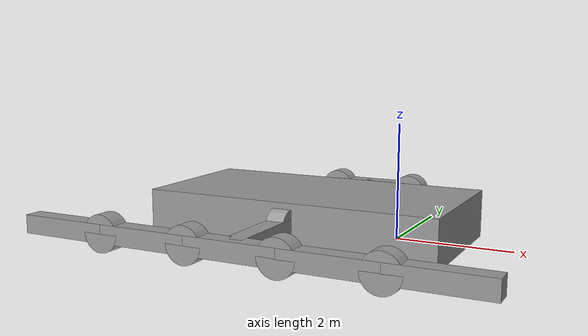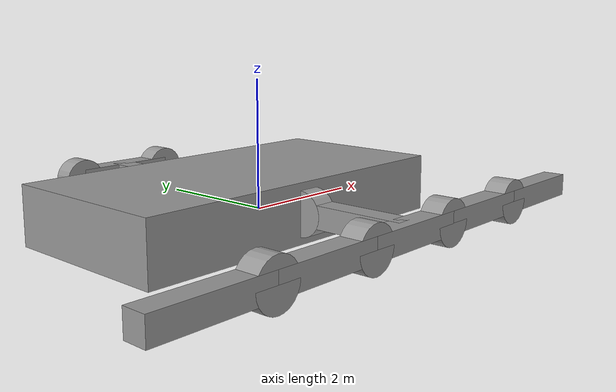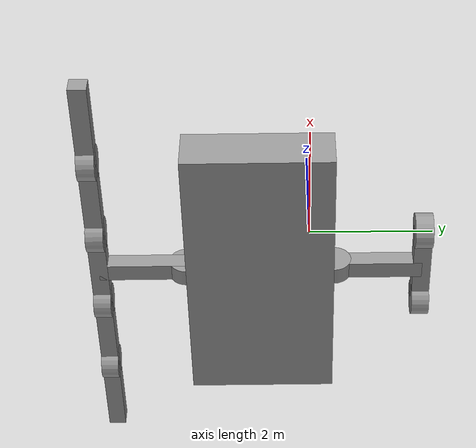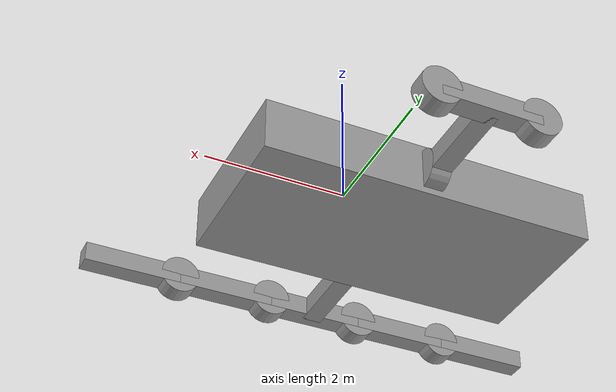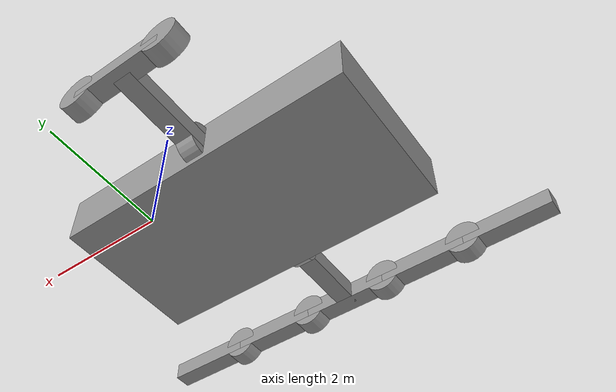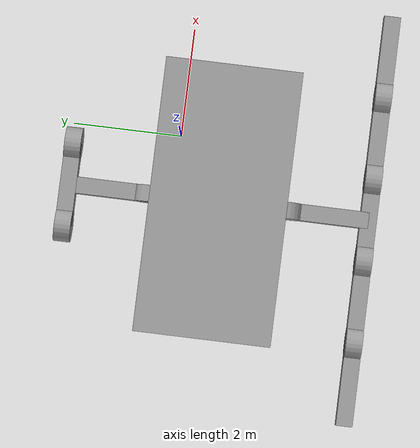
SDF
<?xml version='1.0'?>
<sdf version='1.6'>
  <model name='MS_Faraday'>
    <link name='link_4'>
      <pose frame=''>-2.66054 -3.5769 0.5 0 -0 0</pose>
      <inertial>
        <mass>1</mass>
        <inertia>
          <ixx>0.166667</ixx>
          <ixy>0</ixy>
          <ixz>0</ixz>
          <iyy>0.166667</iyy>
          <iyz>0</iyz>
          <izz>0.166667</izz>
        </inertia>
        <pose frame=''>0 0 0 0 -0 0</pose>
      </inertial>
      <self_collide>1</self_collide>
      <kinematic>0</kinematic>
      <visual name='visual'>
        <pose frame=''>0 0 0 0 -0 0</pose>
        <geometry>
          <box>
            <size>1.5 0.3 0.3</size>
          </box>
        </geometry>
        <material>
          <lighting>1</lighting>
          <script>
            <uri>file://media/materials/scripts/gazebo.material</uri>
            <name>Gazebo/Grey</name>
          </script>
          <ambient>0.3 0.3 0.3 1</ambient>
          <diffuse>0.7 0.7 0.7 1</diffuse>
          <specular>0.01 0.01 0.01 1</specular>
          <emissive>0 0 0 1</emissive>
          <shader type='vertex'>
            <normal_map>__default__</normal_map>
          </shader>
        </material>
        <cast_shadows>1</cast_shadows>
        <transparency>0</transparency>
      </visual>
      <collision name='collision'>
        <laser_retro>0</laser_retro>
        <max_contacts>10</max_contacts>
        <pose frame=''>0 0 0 0 -0 0</pose>
        <geometry>
          <box>
            <size>1.5 0.3 0.3</size>
          </box>
        </geometry>
        <surface>
          <friction>
            <ode>
              <mu>1</mu>
              <mu2>1</mu2>
              <fdir1>0 0 0</fdir1>
              <slip1>0</slip1>
              <slip2>0</slip2>
            </ode>
            <torsional>
              <coefficient>1</coefficient>
              <patch_radius>0</patch_radius>
              <surface_radius>0</surface_radius>
              <use_patch_radius>1</use_patch_radius>
              <ode>
                <slip>0</slip>
              </ode>
            </torsional>
          </friction>
          <bounce>
            <restitution_coefficient>0</restitution_coefficient>
            <threshold>1e+06</threshold>
          </bounce>
          <contact>
            <collide_without_contact>0</collide_without_contact>
            <collide_without_contact_bitmask>1</collide_without_contact_bitmask>
            <collide_bitmask>1</collide_bitmask>
            <ode>
              <soft_cfm>0</soft_cfm>
              <soft_erp>0.2</soft_erp>
              <kp>1e+13</kp>
              <kd>1</kd>
              <max_vel>0.01</max_vel>
              <min_depth>0</min_depth>
            </ode>
            <bullet>
              <split_impulse>1</split_impulse>
              <split_impulse_penetration_threshold>-0.01</split_impulse_penetration_threshold>
              <soft_cfm>0</soft_cfm>
              <soft_erp>0.2</soft_erp>
              <kp>1e+13</kp>
              <kd>1</kd>
            </bullet>
          </contact>
        </surface>
      </collision>
    </link>
    <link name='link_4_clone'>
      <pose frame=''>-4.16054 -3.5769 0.5 0 -0 0</pose>
      <inertial>
        <mass>1</mass>
        <inertia>
          <ixx>0.166667</ixx>
          <ixy>0</ixy>
          <ixz>0</ixz>
          <iyy>0.166667</iyy>
          <iyz>0</iyz>
          <izz>0.166667</izz>
        </inertia>
        <pose frame=''>0 0 0 0 -0 0</pose>
      </inertial>
      <self_collide>1</self_collide>
      <kinematic>0</kinematic>
      <visual name='visual'>
        <pose frame=''>0 0 0 0 -0 0</pose>
        <geometry>
          <box>
            <size>1.5 0.3 0.3</size>
          </box>
        </geometry>
        <material>
          <lighting>1</lighting>
          <script>
            <uri>file://media/materials/scripts/gazebo.material</uri>
            <name>Gazebo/Grey</name>
          </script>
          <ambient>0.3 0.3 0.3 1</ambient>
          <diffuse>0.7 0.7 0.7 1</diffuse>
          <specular>0.01 0.01 0.01 1</specular>
          <emissive>0 0 0 1</emissive>
          <shader type='vertex'>
            <normal_map>__default__</normal_map>
          </shader>
        </material>
        <cast_shadows>1</cast_shadows>
        <transparency>0</transparency>
      </visual>
      <collision name='collision'>
        <laser_retro>0</laser_retro>
        <max_contacts>10</max_contacts>
        <pose frame=''>0 0 0 0 -0 0</pose>
        <geometry>
          <box>
            <size>1.5 0.3 0.3</size>
          </box>
        </geometry>
        <surface>
          <friction>
            <ode>
              <mu>1</mu>
              <mu2>1</mu2>
              <fdir1>0 0 0</fdir1>
              <slip1>0</slip1>
              <slip2>0</slip2>
            </ode>
            <torsional>
              <coefficient>1</coefficient>
              <patch_radius>0</patch_radius>
              <surface_radius>0</surface_radius>
              <use_patch_radius>1</use_patch_radius>
              <ode>
                <slip>0</slip>
              </ode>
            </torsional>
          </friction>
          <bounce>
            <restitution_coefficient>0</restitution_coefficient>
            <threshold>1e+06</threshold>
          </bounce>
          <contact>
            <collide_without_contact>0</collide_without_contact>
            <collide_without_contact_bitmask>1</collide_without_contact_bitmask>
            <collide_bitmask>1</collide_bitmask>
            <ode>
              <soft_cfm>0</soft_cfm>
              <soft_erp>0.2</soft_erp>
              <kp>1e+13</kp>
              <kd>1</kd>
              <max_vel>0.01</max_vel>
              <min_depth>0</min_depth>
            </ode>
            <bullet>
              <split_impulse>1</split_impulse>
              <split_impulse_penetration_threshold>-0.01</split_impulse_penetration_threshold>
              <soft_cfm>0</soft_cfm>
              <soft_erp>0.2</soft_erp>
              <kp>1e+13</kp>
              <kd>1</kd>
            </bullet>
          </contact>
        </surface>
      </collision>
    </link>
    <link name='link_4_clone_0'>
      <pose frame=''>0.339461 -3.5769 0.5 0 -0 0</pose>
      <inertial>
        <mass>1</mass>
        <inertia>
          <ixx>0.166667</ixx>
          <ixy>0</ixy>
          <ixz>0</ixz>
          <iyy>0.166667</iyy>
          <iyz>0</iyz>
          <izz>0.166667</izz>
        </inertia>
        <pose frame=''>0 0 0 0 -0 0</pose>
      </inertial>
      <self_collide>1</self_collide>
      <kinematic>0</kinematic>
      <visual name='visual'>
        <pose frame=''>0 0 0 0 -0 0</pose>
        <geometry>
          <box>
            <size>1.5 0.3 0.3</size>
          </box>
        </geometry>
        <material>
          <lighting>1</lighting>
          <script>
            <uri>file://media/materials/scripts/gazebo.material</uri>
            <name>Gazebo/Grey</name>
          </script>
          <ambient>0.3 0.3 0.3 1</ambient>
          <diffuse>0.7 0.7 0.7 1</diffuse>
          <specular>0.01 0.01 0.01 1</specular>
          <emissive>0 0 0 1</emissive>
          <shader type='vertex'>
            <normal_map>__default__</normal_map>
          </shader>
        </material>
        <cast_shadows>1</cast_shadows>
        <transparency>0</transparency>
      </visual>
      <collision name='collision'>
        <laser_retro>0</laser_retro>
        <max_contacts>10</max_contacts>
        <pose frame=''>0 0 0 0 -0 0</pose>
        <geometry>
          <box>
            <size>1.5 0.3 0.3</size>
          </box>
        </geometry>
        <surface>
          <friction>
            <ode>
              <mu>1</mu>
              <mu2>1</mu2>
              <fdir1>0 0 0</fdir1>
              <slip1>0</slip1>
              <slip2>0</slip2>
            </ode>
            <torsional>
              <coefficient>1</coefficient>
              <patch_radius>0</patch_radius>
              <surface_radius>0</surface_radius>
              <use_patch_radius>1</use_patch_radius>
              <ode>
                <slip>0</slip>
              </ode>
            </torsional>
          </friction>
          <bounce>
            <restitution_coefficient>0</restitution_coefficient>
            <threshold>1e+06</threshold>
          </bounce>
          <contact>
            <collide_without_contact>0</collide_without_contact>
            <collide_without_contact_bitmask>1</collide_without_contact_bitmask>
            <collide_bitmask>1</collide_bitmask>
            <ode>
              <soft_cfm>0</soft_cfm>
              <soft_erp>0.2</soft_erp>
              <kp>1e+13</kp>
              <kd>1</kd>
              <max_vel>0.01</max_vel>
              <min_depth>0</min_depth>
            </ode>
            <bullet>
              <split_impulse>1</split_impulse>
              <split_impulse_penetration_threshold>-0.01</split_impulse_penetration_threshold>
              <soft_cfm>0</soft_cfm>
              <soft_erp>0.2</soft_erp>
              <kp>1e+13</kp>
              <kd>1</kd>
            </bullet>
          </contact>
        </surface>
      </collision>
    </link>
    <link name='link_4_clone_1'>
      <pose frame=''>1.83946 -3.5769 0.5 0 -0 0</pose>
      <inertial>
        <mass>1</mass>
        <inertia>
          <ixx>0.166667</ixx>
          <ixy>0</ixy>
          <ixz>0</ixz>
          <iyy>0.166667</iyy>
          <iyz>0</iyz>
          <izz>0.166667</izz>
        </inertia>
        <pose frame=''>0 0 0 0 -0 0</pose>
      </inertial>
      <self_collide>1</self_collide>
      <kinematic>0</kinematic>
      <visual name='visual'>
        <pose frame=''>0 0 0 0 -0 0</pose>
        <geometry>
          <box>
            <size>1.5 0.3 0.3</size>
          </box>
        </geometry>
        <material>
          <lighting>1</lighting>
          <script>
            <uri>file://media/materials/scripts/gazebo.material</uri>
            <name>Gazebo/Grey</name>
          </script>
          <ambient>0.3 0.3 0.3 1</ambient>
          <diffuse>0.7 0.7 0.7 1</diffuse>
          <specular>0.01 0.01 0.01 1</specular>
          <emissive>0 0 0 1</emissive>
          <shader type='vertex'>
            <normal_map>__default__</normal_map>
          </shader>
        </material>
        <cast_shadows>1</cast_shadows>
        <transparency>0</transparency>
      </visual>
      <collision name='collision'>
        <laser_retro>0</laser_retro>
        <max_contacts>10</max_contacts>
        <pose frame=''>0 0 0 0 -0 0</pose>
        <geometry>
          <box>
            <size>1.5 0.3 0.3</size>
          </box>
        </geometry>
        <surface>
          <friction>
            <ode>
              <mu>1</mu>
              <mu2>1</mu2>
              <fdir1>0 0 0</fdir1>
              <slip1>0</slip1>
              <slip2>0</slip2>
            </ode>
            <torsional>
              <coefficient>1</coefficient>
              <patch_radius>0</patch_radius>
              <surface_radius>0</surface_radius>
              <use_patch_radius>1</use_patch_radius>
              <ode>
                <slip>0</slip>
              </ode>
            </torsional>
          </friction>
          <bounce>
            <restitution_coefficient>0</restitution_coefficient>
            <threshold>1e+06</threshold>
          </bounce>
          <contact>
            <collide_without_contact>0</collide_without_contact>
            <collide_without_contact_bitmask>1</collide_without_contact_bitmask>
            <collide_bitmask>1</collide_bitmask>
            <ode>
              <soft_cfm>0</soft_cfm>
              <soft_erp>0.2</soft_erp>
              <kp>1e+13</kp>
              <kd>1</kd>
              <max_vel>0.01</max_vel>
              <min_depth>0</min_depth>
            </ode>
            <bullet>
              <split_impulse>1</split_impulse>
              <split_impulse_penetration_threshold>-0.01</split_impulse_penetration_threshold>
              <soft_cfm>0</soft_cfm>
              <soft_erp>0.2</soft_erp>
              <kp>1e+13</kp>
              <kd>1</kd>
            </bullet>
          </contact>
        </surface>
      </collision>
    </link>
    <link name='link_4_clone_2'>
      <pose frame=''>-1.16054 -3.5769 0.5 0 -0 0</pose>
      <inertial>
        <mass>1</mass>
        <inertia>
          <ixx>0.166667</ixx>
          <ixy>0</ixy>
          <ixz>0</ixz>
          <iyy>0.166667</iyy>
          <iyz>0</iyz>
          <izz>0.166667</izz>
        </inertia>
        <pose frame=''>0 0 0 0 -0 0</pose>
      </inertial>
      <self_collide>1</self_collide>
      <kinematic>0</kinematic>
      <visual name='visual'>
        <pose frame=''>0 0 0 0 -0 0</pose>
        <geometry>
          <box>
            <size>1.5 0.3 0.3</size>
          </box>
        </geometry>
        <material>
          <lighting>1</lighting>
          <script>
            <uri>file://media/materials/scripts/gazebo.material</uri>
            <name>Gazebo/Grey</name>
          </script>
          <ambient>0.3 0.3 0.3 1</ambient>
          <diffuse>0.7 0.7 0.7 1</diffuse>
          <specular>0.01 0.01 0.01 1</specular>
          <emissive>0 0 0 1</emissive>
          <shader type='vertex'>
            <normal_map>__default__</normal_map>
          </shader>
        </material>
        <cast_shadows>1</cast_shadows>
        <transparency>0</transparency>
      </visual>
      <collision name='collision'>
        <laser_retro>0</laser_retro>
        <max_contacts>10</max_contacts>
        <pose frame=''>0 0 0 0 -0 0</pose>
        <geometry>
          <box>
            <size>1.5 0.3 0.3</size>
          </box>
        </geometry>
        <surface>
          <friction>
            <ode>
              <mu>1</mu>
              <mu2>1</mu2>
              <fdir1>0 0 0</fdir1>
              <slip1>0</slip1>
              <slip2>0</slip2>
            </ode>
            <torsional>
              <coefficient>1</coefficient>
              <patch_radius>0</patch_radius>
              <surface_radius>0</surface_radius>
              <use_patch_radius>1</use_patch_radius>
              <ode>
                <slip>0</slip>
              </ode>
            </torsional>
          </friction>
          <bounce>
            <restitution_coefficient>0</restitution_coefficient>
            <threshold>1e+06</threshold>
          </bounce>
          <contact>
            <collide_without_contact>0</collide_without_contact>
            <collide_without_contact_bitmask>1</collide_without_contact_bitmask>
            <collide_bitmask>1</collide_bitmask>
            <ode>
              <soft_cfm>0</soft_cfm>
              <soft_erp>0.2</soft_erp>
              <kp>1e+13</kp>
              <kd>1</kd>
              <max_vel>0.01</max_vel>
              <min_depth>0</min_depth>
            </ode>
            <bullet>
              <split_impulse>1</split_impulse>
              <split_impulse_penetration_threshold>-0.01</split_impulse_penetration_threshold>
              <soft_cfm>0</soft_cfm>
              <soft_erp>0.2</soft_erp>
              <kp>1e+13</kp>
              <kd>1</kd>
            </bullet>
          </contact>
        </surface>
      </collision>
    </link>
    <link name='link_4_clone_2_clone'>
      <pose frame=''>-1.16054 1.9231 0.5 0 -0 0</pose>
      <inertial>
        <mass>1</mass>
        <inertia>
          <ixx>0.166667</ixx>
          <ixy>0</ixy>
          <ixz>0</ixz>
          <iyy>0.166667</iyy>
          <iyz>0</iyz>
          <izz>0.166667</izz>
        </inertia>
        <pose frame=''>0 0 0 0 -0 0</pose>
      </inertial>
      <self_collide>1</self_collide>
      <kinematic>0</kinematic>
      <visual name='visual'>
        <pose frame=''>0 0 0 0 -0 0</pose>
        <geometry>
          <box>
            <size>1.5 0.3 0.3</size>
          </box>
        </geometry>
        <material>
          <lighting>1</lighting>
          <script>
            <uri>file://media/materials/scripts/gazebo.material</uri>
            <name>Gazebo/Grey</name>
          </script>
          <ambient>0.3 0.3 0.3 1</ambient>
          <diffuse>0.7 0.7 0.7 1</diffuse>
          <specular>0.01 0.01 0.01 1</specular>
          <emissive>0 0 0 1</emissive>
          <shader type='vertex'>
            <normal_map>__default__</normal_map>
          </shader>
        </material>
        <cast_shadows>1</cast_shadows>
        <transparency>0</transparency>
      </visual>
      <collision name='collision'>
        <laser_retro>0</laser_retro>
        <max_contacts>10</max_contacts>
        <pose frame=''>0 0 0 0 -0 0</pose>
        <geometry>
          <box>
            <size>1.5 0.3 0.3</size>
          </box>
        </geometry>
        <surface>
          <friction>
            <ode>
              <mu>1</mu>
              <mu2>1</mu2>
              <fdir1>0 0 0</fdir1>
              <slip1>0</slip1>
              <slip2>0</slip2>
            </ode>
            <torsional>
              <coefficient>1</coefficient>
              <patch_radius>0</patch_radius>
              <surface_radius>0</surface_radius>
              <use_patch_radius>1</use_patch_radius>
              <ode>
                <slip>0</slip>
              </ode>
            </torsional>
          </friction>
          <bounce>
            <restitution_coefficient>0</restitution_coefficient>
            <threshold>1e+06</threshold>
          </bounce>
          <contact>
            <collide_without_contact>0</collide_without_contact>
            <collide_without_contact_bitmask>1</collide_without_contact_bitmask>
            <collide_bitmask>1</collide_bitmask>
            <ode>
              <soft_cfm>0</soft_cfm>
              <soft_erp>0.2</soft_erp>
              <kp>1e+13</kp>
              <kd>1</kd>
              <max_vel>0.01</max_vel>
              <min_depth>0</min_depth>
            </ode>
            <bullet>
              <split_impulse>1</split_impulse>
              <split_impulse_penetration_threshold>-0.01</split_impulse_penetration_threshold>
              <soft_cfm>0</soft_cfm>
              <soft_erp>0.2</soft_erp>
              <kp>1e+13</kp>
              <kd>1</kd>
            </bullet>
          </contact>
        </surface>
      </collision>
    </link>
    <link name='link_4_clone_3'>
      <pose frame=''>-1.16054 -2.8269 0.5 0 -0 0</pose>
      <inertial>
        <mass>1</mass>
        <inertia>
          <ixx>0.166667</ixx>
          <ixy>0</ixy>
          <ixz>0</ixz>
          <iyy>0.166667</iyy>
          <iyz>0</iyz>
          <izz>0.166667</izz>
        </inertia>
        <pose frame=''>0 0 0 0 -0 0</pose>
      </inertial>
      <self_collide>1</self_collide>
      <kinematic>0</kinematic>
      <visual name='visual'>
        <pose frame=''>0 0 0 0 -0 1.57</pose>
        <geometry>
          <box>
            <size>1.5 0.3 0.3</size>
          </box>
        </geometry>
        <material>
          <lighting>1</lighting>
          <script>
            <uri>file://media/materials/scripts/gazebo.material</uri>
            <name>Gazebo/Grey</name>
          </script>
          <ambient>0.3 0.3 0.3 1</ambient>
          <diffuse>0.7 0.7 0.7 1</diffuse>
          <specular>0.01 0.01 0.01 1</specular>
          <emissive>0 0 0 1</emissive>
          <shader type='vertex'>
            <normal_map>__default__</normal_map>
          </shader>
        </material>
        <cast_shadows>1</cast_shadows>
        <transparency>0</transparency>
      </visual>
      <collision name='collision'>
        <laser_retro>0</laser_retro>
        <max_contacts>10</max_contacts>
        <pose frame=''>0 0 0 0 -0 1.57</pose>
        <geometry>
          <box>
            <size>1.5 0.3 0.3</size>
          </box>
        </geometry>
        <surface>
          <friction>
            <ode>
              <mu>1</mu>
              <mu2>1</mu2>
              <fdir1>0 0 0</fdir1>
              <slip1>0</slip1>
              <slip2>0</slip2>
            </ode>
            <torsional>
              <coefficient>1</coefficient>
              <patch_radius>0</patch_radius>
              <surface_radius>0</surface_radius>
              <use_patch_radius>1</use_patch_radius>
              <ode>
                <slip>0</slip>
              </ode>
            </torsional>
          </friction>
          <bounce>
            <restitution_coefficient>0</restitution_coefficient>
            <threshold>1e+06</threshold>
          </bounce>
          <contact>
            <collide_without_contact>0</collide_without_contact>
            <collide_without_contact_bitmask>1</collide_without_contact_bitmask>
            <collide_bitmask>1</collide_bitmask>
            <ode>
              <soft_cfm>0</soft_cfm>
              <soft_erp>0.2</soft_erp>
              <kp>1e+13</kp>
              <kd>1</kd>
              <max_vel>0.01</max_vel>
              <min_depth>0</min_depth>
            </ode>
            <bullet>
              <split_impulse>1</split_impulse>
              <split_impulse_penetration_threshold>-0.01</split_impulse_penetration_threshold>
              <soft_cfm>0</soft_cfm>
              <soft_erp>0.2</soft_erp>
              <kp>1e+13</kp>
              <kd>1</kd>
            </bullet>
          </contact>
        </surface>
      </collision>
    </link>
    <link name='link_4_clone_3_clone'>
      <pose frame=''>-1.16054 1.1731 0.5 0 -0 0</pose>
      <inertial>
        <mass>1</mass>
        <inertia>
          <ixx>0.166667</ixx>
          <ixy>0</ixy>
          <ixz>0</ixz>
          <iyy>0.166667</iyy>
          <iyz>0</iyz>
          <izz>0.166667</izz>
        </inertia>
        <pose frame=''>0 0 0 0 -0 0</pose>
      </inertial>
      <self_collide>1</self_collide>
      <kinematic>0</kinematic>
      <visual name='visual'>
        <pose frame=''>0 0 0 0 -0 1.57</pose>
        <geometry>
          <box>
            <size>1.5 0.3 0.3</size>
          </box>
        </geometry>
        <material>
          <lighting>1</lighting>
          <script>
            <uri>file://media/materials/scripts/gazebo.material</uri>
            <name>Gazebo/Grey</name>
          </script>
          <ambient>0.3 0.3 0.3 1</ambient>
          <diffuse>0.7 0.7 0.7 1</diffuse>
          <specular>0.01 0.01 0.01 1</specular>
          <emissive>0 0 0 1</emissive>
          <shader type='vertex'>
            <normal_map>__default__</normal_map>
          </shader>
        </material>
        <cast_shadows>1</cast_shadows>
        <transparency>0</transparency>
      </visual>
      <collision name='collision'>
        <laser_retro>0</laser_retro>
        <max_contacts>10</max_contacts>
        <pose frame=''>0 0 0 0 -0 1.57</pose>
        <geometry>
          <box>
            <size>1.5 0.3 0.3</size>
          </box>
        </geometry>
        <surface>
          <friction>
            <ode>
              <mu>1</mu>
              <mu2>1</mu2>
              <fdir1>0 0 0</fdir1>
              <slip1>0</slip1>
              <slip2>0</slip2>
            </ode>
            <torsional>
              <coefficient>1</coefficient>
              <patch_radius>0</patch_radius>
              <surface_radius>0</surface_radius>
              <use_patch_radius>1</use_patch_radius>
              <ode>
                <slip>0</slip>
              </ode>
            </torsional>
          </friction>
          <bounce>
            <restitution_coefficient>0</restitution_coefficient>
            <threshold>1e+06</threshold>
          </bounce>
          <contact>
            <collide_without_contact>0</collide_without_contact>
            <collide_without_contact_bitmask>1</collide_without_contact_bitmask>
            <collide_bitmask>1</collide_bitmask>
            <ode>
              <soft_cfm>0</soft_cfm>
              <soft_erp>0.2</soft_erp>
              <kp>1e+13</kp>
              <kd>1</kd>
              <max_vel>0.01</max_vel>
              <min_depth>0</min_depth>
            </ode>
            <bullet>
              <split_impulse>1</split_impulse>
              <split_impulse_penetration_threshold>-0.01</split_impulse_penetration_threshold>
              <soft_cfm>0</soft_cfm>
              <soft_erp>0.2</soft_erp>
              <kp>1e+13</kp>
              <kd>1</kd>
            </bullet>
          </contact>
        </surface>
      </collision>
    </link>
    <link name='link_6'>
      <pose frame=''>-3.41054 -3.5769 0.5 0 -0 0</pose>
      <inertial>
        <mass>1</mass>
        <inertia>
          <ixx>0.145833</ixx>
          <ixy>0</ixy>
          <ixz>0</ixz>
          <iyy>0.145833</iyy>
          <iyz>0</iyz>
          <izz>0.125</izz>
        </inertia>
        <pose frame=''>0 0 0 0 -0 0</pose>
      </inertial>
      <self_collide>1</self_collide>
      <kinematic>0</kinematic>
      <visual name='visual'>
        <pose frame=''>0 0 0 1.5707 -0 0</pose>
        <geometry>
          <cylinder>
            <radius>0.3</radius>
            <length>0.3</length>
          </cylinder>
        </geometry>
        <material>
          <lighting>1</lighting>
          <script>
            <uri>file://media/materials/scripts/gazebo.material</uri>
            <name>Gazebo/Grey</name>
          </script>
          <ambient>0.3 0.3 0.3 1</ambient>
          <diffuse>0.7 0.7 0.7 1</diffuse>
          <specular>0.01 0.01 0.01 1</specular>
          <emissive>0 0 0 1</emissive>
          <shader type='vertex'>
            <normal_map>__default__</normal_map>
          </shader>
        </material>
        <cast_shadows>1</cast_shadows>
        <transparency>0</transparency>
      </visual>
      <collision name='collision'>
        <laser_retro>0</laser_retro>
        <max_contacts>10</max_contacts>
        <pose frame=''>0 0 0 1.5707 -0 0</pose>
        <geometry>
          <cylinder>
            <radius>0.3</radius>
            <length>0.3</length>
          </cylinder>
        </geometry>
        <surface>
          <friction>
            <ode>
              <mu>1</mu>
              <mu2>1</mu2>
              <fdir1>0 0 0</fdir1>
              <slip1>0</slip1>
              <slip2>0</slip2>
            </ode>
            <torsional>
              <coefficient>1</coefficient>
              <patch_radius>0</patch_radius>
              <surface_radius>0</surface_radius>
              <use_patch_radius>1</use_patch_radius>
              <ode>
                <slip>0</slip>
              </ode>
            </torsional>
          </friction>
          <bounce>
            <restitution_coefficient>0</restitution_coefficient>
            <threshold>1e+06</threshold>
          </bounce>
          <contact>
            <collide_without_contact>0</collide_without_contact>
            <collide_without_contact_bitmask>1</collide_without_contact_bitmask>
            <collide_bitmask>1</collide_bitmask>
            <ode>
              <soft_cfm>0</soft_cfm>
              <soft_erp>0.2</soft_erp>
              <kp>1e+13</kp>
              <kd>1</kd>
              <max_vel>0.01</max_vel>
              <min_depth>0</min_depth>
            </ode>
            <bullet>
              <split_impulse>1</split_impulse>
              <split_impulse_penetration_threshold>-0.01</split_impulse_penetration_threshold>
              <soft_cfm>0</soft_cfm>
              <soft_erp>0.2</soft_erp>
              <kp>1e+13</kp>
              <kd>1</kd>
            </bullet>
          </contact>
        </surface>
      </collision>
    </link>
    <link name='link_6_clone'>
      <pose frame=''>-1.91054 -3.5769 0.5 0 -0 0</pose>
      <inertial>
        <mass>1</mass>
        <inertia>
          <ixx>0.145833</ixx>
          <ixy>0</ixy>
          <ixz>0</ixz>
          <iyy>0.145833</iyy>
          <iyz>0</iyz>
          <izz>0.125</izz>
        </inertia>
        <pose frame=''>0 0 0 0 -0 0</pose>
      </inertial>
      <self_collide>1</self_collide>
      <kinematic>0</kinematic>
      <visual name='visual'>
        <pose frame=''>0 0 0 1.5707 -0 0</pose>
        <geometry>
          <cylinder>
            <radius>0.3</radius>
            <length>0.3</length>
          </cylinder>
        </geometry>
        <material>
          <lighting>1</lighting>
          <script>
            <uri>file://media/materials/scripts/gazebo.material</uri>
            <name>Gazebo/Grey</name>
          </script>
          <ambient>0.3 0.3 0.3 1</ambient>
          <diffuse>0.7 0.7 0.7 1</diffuse>
          <specular>0.01 0.01 0.01 1</specular>
          <emissive>0 0 0 1</emissive>
          <shader type='vertex'>
            <normal_map>__default__</normal_map>
          </shader>
        </material>
        <cast_shadows>1</cast_shadows>
        <transparency>0</transparency>
      </visual>
      <collision name='collision'>
        <laser_retro>0</laser_retro>
        <max_contacts>10</max_contacts>
        <pose frame=''>0 0 0 1.5707 -0 0</pose>
        <geometry>
          <cylinder>
            <radius>0.3</radius>
            <length>0.3</length>
          </cylinder>
        </geometry>
        <surface>
          <friction>
            <ode>
              <mu>1</mu>
              <mu2>1</mu2>
              <fdir1>0 0 0</fdir1>
              <slip1>0</slip1>
              <slip2>0</slip2>
            </ode>
            <torsional>
              <coefficient>1</coefficient>
              <patch_radius>0</patch_radius>
              <surface_radius>0</surface_radius>
              <use_patch_radius>1</use_patch_radius>
              <ode>
                <slip>0</slip>
              </ode>
            </torsional>
          </friction>
          <bounce>
            <restitution_coefficient>0</restitution_coefficient>
            <threshold>1e+06</threshold>
          </bounce>
          <contact>
            <collide_without_contact>0</collide_without_contact>
            <collide_without_contact_bitmask>1</collide_without_contact_bitmask>
            <collide_bitmask>1</collide_bitmask>
            <ode>
              <soft_cfm>0</soft_cfm>
              <soft_erp>0.2</soft_erp>
              <kp>1e+13</kp>
              <kd>1</kd>
              <max_vel>0.01</max_vel>
              <min_depth>0</min_depth>
            </ode>
            <bullet>
              <split_impulse>1</split_impulse>
              <split_impulse_penetration_threshold>-0.01</split_impulse_penetration_threshold>
              <soft_cfm>0</soft_cfm>
              <soft_erp>0.2</soft_erp>
              <kp>1e+13</kp>
              <kd>1</kd>
            </bullet>
          </contact>
        </surface>
      </collision>
    </link>
    <link name='link_6_clone_0'>
      <pose frame=''>-0.410538 -3.5769 0.5 0 -0 0</pose>
      <inertial>
        <mass>1</mass>
        <inertia>
          <ixx>0.145833</ixx>
          <ixy>0</ixy>
          <ixz>0</ixz>
          <iyy>0.145833</iyy>
          <iyz>0</iyz>
          <izz>0.125</izz>
        </inertia>
        <pose frame=''>0 0 0 0 -0 0</pose>
      </inertial>
      <self_collide>1</self_collide>
      <kinematic>0</kinematic>
      <visual name='visual'>
        <pose frame=''>0 0 0 1.5707 -0 0</pose>
        <geometry>
          <cylinder>
            <radius>0.3</radius>
            <length>0.3</length>
          </cylinder>
        </geometry>
        <material>
          <lighting>1</lighting>
          <script>
            <uri>file://media/materials/scripts/gazebo.material</uri>
            <name>Gazebo/Grey</name>
          </script>
          <ambient>0.3 0.3 0.3 1</ambient>
          <diffuse>0.7 0.7 0.7 1</diffuse>
          <specular>0.01 0.01 0.01 1</specular>
          <emissive>0 0 0 1</emissive>
          <shader type='vertex'>
            <normal_map>__default__</normal_map>
          </shader>
        </material>
        <cast_shadows>1</cast_shadows>
        <transparency>0</transparency>
      </visual>
      <collision name='collision'>
        <laser_retro>0</laser_retro>
        <max_contacts>10</max_contacts>
        <pose frame=''>0 0 0 1.5707 -0 0</pose>
        <geometry>
          <cylinder>
            <radius>0.3</radius>
            <length>0.3</length>
          </cylinder>
        </geometry>
        <surface>
          <friction>
            <ode>
              <mu>1</mu>
              <mu2>1</mu2>
              <fdir1>0 0 0</fdir1>
              <slip1>0</slip1>
              <slip2>0</slip2>
            </ode>
            <torsional>
              <coefficient>1</coefficient>
              <patch_radius>0</patch_radius>
              <surface_radius>0</surface_radius>
              <use_patch_radius>1</use_patch_radius>
              <ode>
                <slip>0</slip>
              </ode>
            </torsional>
          </friction>
          <bounce>
            <restitution_coefficient>0</restitution_coefficient>
            <threshold>1e+06</threshold>
          </bounce>
          <contact>
            <collide_without_contact>0</collide_without_contact>
            <collide_without_contact_bitmask>1</collide_without_contact_bitmask>
            <collide_bitmask>1</collide_bitmask>
            <ode>
              <soft_cfm>0</soft_cfm>
              <soft_erp>0.2</soft_erp>
              <kp>1e+13</kp>
              <kd>1</kd>
              <max_vel>0.01</max_vel>
              <min_depth>0</min_depth>
            </ode>
            <bullet>
              <split_impulse>1</split_impulse>
              <split_impulse_penetration_threshold>-0.01</split_impulse_penetration_threshold>
              <soft_cfm>0</soft_cfm>
              <soft_erp>0.2</soft_erp>
              <kp>1e+13</kp>
              <kd>1</kd>
            </bullet>
          </contact>
        </surface>
      </collision>
    </link>
    <link name='link_6_clone_0_clone'>
      <pose frame=''>-0.410541 1.9231 0.5 0 -0 0</pose>
      <inertial>
        <mass>1</mass>
        <inertia>
          <ixx>0.145833</ixx>
          <ixy>0</ixy>
          <ixz>0</ixz>
          <iyy>0.145833</iyy>
          <iyz>0</iyz>
          <izz>0.125</izz>
        </inertia>
        <pose frame=''>0 0 0 0 -0 0</pose>
      </inertial>
      <self_collide>1</self_collide>
      <kinematic>0</kinematic>
      <visual name='visual'>
        <pose frame=''>0 0 0 1.5707 -0 0</pose>
        <geometry>
          <cylinder>
            <radius>0.3</radius>
            <length>0.3</length>
          </cylinder>
        </geometry>
        <material>
          <lighting>1</lighting>
          <script>
            <uri>file://media/materials/scripts/gazebo.material</uri>
            <name>Gazebo/Grey</name>
          </script>
          <ambient>0.3 0.3 0.3 1</ambient>
          <diffuse>0.7 0.7 0.7 1</diffuse>
          <specular>0.01 0.01 0.01 1</specular>
          <emissive>0 0 0 1</emissive>
          <shader type='vertex'>
            <normal_map>__default__</normal_map>
          </shader>
        </material>
        <cast_shadows>1</cast_shadows>
        <transparency>0</transparency>
      </visual>
      <collision name='collision'>
        <laser_retro>0</laser_retro>
        <max_contacts>10</max_contacts>
        <pose frame=''>0 0 0 1.5707 -0 0</pose>
        <geometry>
          <cylinder>
            <radius>0.3</radius>
            <length>0.3</length>
          </cylinder>
        </geometry>
        <surface>
          <friction>
            <ode>
              <mu>1</mu>
              <mu2>1</mu2>
              <fdir1>0 0 0</fdir1>
              <slip1>0</slip1>
              <slip2>0</slip2>
            </ode>
            <torsional>
              <coefficient>1</coefficient>
              <patch_radius>0</patch_radius>
              <surface_radius>0</surface_radius>
              <use_patch_radius>1</use_patch_radius>
              <ode>
                <slip>0</slip>
              </ode>
            </torsional>
          </friction>
          <bounce>
            <restitution_coefficient>0</restitution_coefficient>
            <threshold>1e+06</threshold>
          </bounce>
          <contact>
            <collide_without_contact>0</collide_without_contact>
            <collide_without_contact_bitmask>1</collide_without_contact_bitmask>
            <collide_bitmask>1</collide_bitmask>
            <ode>
              <soft_cfm>0</soft_cfm>
              <soft_erp>0.2</soft_erp>
              <kp>1e+13</kp>
              <kd>1</kd>
              <max_vel>0.01</max_vel>
              <min_depth>0</min_depth>
            </ode>
            <bullet>
              <split_impulse>1</split_impulse>
              <split_impulse_penetration_threshold>-0.01</split_impulse_penetration_threshold>
              <soft_cfm>0</soft_cfm>
              <soft_erp>0.2</soft_erp>
              <kp>1e+13</kp>
              <kd>1</kd>
            </bullet>
          </contact>
        </surface>
      </collision>
    </link>
    <link name='link_6_clone_0_clone_0'>
      <pose frame=''>-1.91054 1.9231 0.5 0 -0 0</pose>
      <inertial>
        <mass>1</mass>
        <inertia>
          <ixx>0.145833</ixx>
          <ixy>0</ixy>
          <ixz>0</ixz>
          <iyy>0.145833</iyy>
          <iyz>0</iyz>
          <izz>0.125</izz>
        </inertia>
        <pose frame=''>0 0 0 0 -0 0</pose>
      </inertial>
      <self_collide>1</self_collide>
      <kinematic>0</kinematic>
      <visual name='visual'>
        <pose frame=''>0 0 0 1.5707 -0 0</pose>
        <geometry>
          <cylinder>
            <radius>0.3</radius>
            <length>0.3</length>
          </cylinder>
        </geometry>
        <material>
          <lighting>1</lighting>
          <script>
            <uri>file://media/materials/scripts/gazebo.material</uri>
            <name>Gazebo/Grey</name>
          </script>
          <ambient>0.3 0.3 0.3 1</ambient>
          <diffuse>0.7 0.7 0.7 1</diffuse>
          <specular>0.01 0.01 0.01 1</specular>
          <emissive>0 0 0 1</emissive>
          <shader type='vertex'>
            <normal_map>__default__</normal_map>
          </shader>
        </material>
        <cast_shadows>1</cast_shadows>
        <transparency>0</transparency>
      </visual>
      <collision name='collision'>
        <laser_retro>0</laser_retro>
        <max_contacts>10</max_contacts>
        <pose frame=''>0 0 0 1.5707 -0 0</pose>
        <geometry>
          <cylinder>
            <radius>0.3</radius>
            <length>0.3</length>
          </cylinder>
        </geometry>
        <surface>
          <friction>
            <ode>
              <mu>1</mu>
              <mu2>1</mu2>
              <fdir1>0 0 0</fdir1>
              <slip1>0</slip1>
              <slip2>0</slip2>
            </ode>
            <torsional>
              <coefficient>1</coefficient>
              <patch_radius>0</patch_radius>
              <surface_radius>0</surface_radius>
              <use_patch_radius>1</use_patch_radius>
              <ode>
                <slip>0</slip>
              </ode>
            </torsional>
          </friction>
          <bounce>
            <restitution_coefficient>0</restitution_coefficient>
            <threshold>1e+06</threshold>
          </bounce>
          <contact>
            <collide_without_contact>0</collide_without_contact>
            <collide_without_contact_bitmask>1</collide_without_contact_bitmask>
            <collide_bitmask>1</collide_bitmask>
            <ode>
              <soft_cfm>0</soft_cfm>
              <soft_erp>0.2</soft_erp>
              <kp>1e+13</kp>
              <kd>1</kd>
              <max_vel>0.01</max_vel>
              <min_depth>0</min_depth>
            </ode>
            <bullet>
              <split_impulse>1</split_impulse>
              <split_impulse_penetration_threshold>-0.01</split_impulse_penetration_threshold>
              <soft_cfm>0</soft_cfm>
              <soft_erp>0.2</soft_erp>
              <kp>1e+13</kp>
              <kd>1</kd>
            </bullet>
          </contact>
        </surface>
      </collision>
    </link>
    <link name='link_6_clone_1'>
      <pose frame=''>1.08946 -3.5769 0.5 0 -0 0</pose>
      <inertial>
        <mass>1</mass>
        <inertia>
          <ixx>0.145833</ixx>
          <ixy>0</ixy>
          <ixz>0</ixz>
          <iyy>0.145833</iyy>
          <iyz>0</iyz>
          <izz>0.125</izz>
        </inertia>
        <pose frame=''>0 0 0 0 -0 0</pose>
      </inertial>
      <self_collide>1</self_collide>
      <kinematic>0</kinematic>
      <visual name='visual'>
        <pose frame=''>0 0 0 1.5707 -0 0</pose>
        <geometry>
          <cylinder>
            <radius>0.3</radius>
            <length>0.3</length>
          </cylinder>
        </geometry>
        <material>
          <lighting>1</lighting>
          <script>
            <uri>file://media/materials/scripts/gazebo.material</uri>
            <name>Gazebo/Grey</name>
          </script>
          <ambient>0.3 0.3 0.3 1</ambient>
          <diffuse>0.7 0.7 0.7 1</diffuse>
          <specular>0.01 0.01 0.01 1</specular>
          <emissive>0 0 0 1</emissive>
          <shader type='vertex'>
            <normal_map>__default__</normal_map>
          </shader>
        </material>
        <cast_shadows>1</cast_shadows>
        <transparency>0</transparency>
      </visual>
      <collision name='collision'>
        <laser_retro>0</laser_retro>
        <max_contacts>10</max_contacts>
        <pose frame=''>0 0 0 1.5707 -0 0</pose>
        <geometry>
          <cylinder>
            <radius>0.3</radius>
            <length>0.3</length>
          </cylinder>
        </geometry>
        <surface>
          <friction>
            <ode>
              <mu>1</mu>
              <mu2>1</mu2>
              <fdir1>0 0 0</fdir1>
              <slip1>0</slip1>
              <slip2>0</slip2>
            </ode>
            <torsional>
              <coefficient>1</coefficient>
              <patch_radius>0</patch_radius>
              <surface_radius>0</surface_radius>
              <use_patch_radius>1</use_patch_radius>
              <ode>
                <slip>0</slip>
              </ode>
            </torsional>
          </friction>
          <bounce>
            <restitution_coefficient>0</restitution_coefficient>
            <threshold>1e+06</threshold>
          </bounce>
          <contact>
            <collide_without_contact>0</collide_without_contact>
            <collide_without_contact_bitmask>1</collide_without_contact_bitmask>
            <collide_bitmask>1</collide_bitmask>
            <ode>
              <soft_cfm>0</soft_cfm>
              <soft_erp>0.2</soft_erp>
              <kp>1e+13</kp>
              <kd>1</kd>
              <max_vel>0.01</max_vel>
              <min_depth>0</min_depth>
            </ode>
            <bullet>
              <split_impulse>1</split_impulse>
              <split_impulse_penetration_threshold>-0.01</split_impulse_penetration_threshold>
              <soft_cfm>0</soft_cfm>
              <soft_erp>0.2</soft_erp>
              <kp>1e+13</kp>
              <kd>1</kd>
            </bullet>
          </contact>
        </surface>
      </collision>
    </link>
    <link name='link_6_clone_2'>
      <pose frame=''>-1.16054 -2.0769 0.5 0 -0 0</pose>
      <inertial>
        <mass>1</mass>
        <inertia>
          <ixx>0.145833</ixx>
          <ixy>0</ixy>
          <ixz>0</ixz>
          <iyy>0.145833</iyy>
          <iyz>0</iyz>
          <izz>0.125</izz>
        </inertia>
        <pose frame=''>0 0 0 0 -0 0</pose>
      </inertial>
      <self_collide>1</self_collide>
      <kinematic>0</kinematic>
      <visual name='visual'>
        <pose frame=''>0 0 0 0 1.57 0</pose>
        <geometry>
          <cylinder>
            <radius>0.3</radius>
            <length>0.3</length>
          </cylinder>
        </geometry>
        <material>
          <lighting>1</lighting>
          <script>
            <uri>file://media/materials/scripts/gazebo.material</uri>
            <name>Gazebo/Grey</name>
          </script>
          <ambient>0.3 0.3 0.3 1</ambient>
          <diffuse>0.7 0.7 0.7 1</diffuse>
          <specular>0.01 0.01 0.01 1</specular>
          <emissive>0 0 0 1</emissive>
          <shader type='vertex'>
            <normal_map>__default__</normal_map>
          </shader>
        </material>
        <cast_shadows>1</cast_shadows>
        <transparency>0</transparency>
      </visual>
      <collision name='collision'>
        <laser_retro>0</laser_retro>
        <max_contacts>10</max_contacts>
        <pose frame=''>0 0 0 0 1.57 0</pose>
        <geometry>
          <cylinder>
            <radius>0.3</radius>
            <length>0.3</length>
          </cylinder>
        </geometry>
        <surface>
          <friction>
            <ode>
              <mu>1</mu>
              <mu2>1</mu2>
              <fdir1>0 0 0</fdir1>
              <slip1>0</slip1>
              <slip2>0</slip2>
            </ode>
            <torsional>
              <coefficient>1</coefficient>
              <patch_radius>0</patch_radius>
              <surface_radius>0</surface_radius>
              <use_patch_radius>1</use_patch_radius>
              <ode>
                <slip>0</slip>
              </ode>
            </torsional>
          </friction>
          <bounce>
            <restitution_coefficient>0</restitution_coefficient>
            <threshold>1e+06</threshold>
          </bounce>
          <contact>
            <collide_without_contact>0</collide_without_contact>
            <collide_without_contact_bitmask>1</collide_without_contact_bitmask>
            <collide_bitmask>1</collide_bitmask>
            <ode>
              <soft_cfm>0</soft_cfm>
              <soft_erp>0.2</soft_erp>
              <kp>1e+13</kp>
              <kd>1</kd>
              <max_vel>0.01</max_vel>
              <min_depth>0</min_depth>
            </ode>
            <bullet>
              <split_impulse>1</split_impulse>
              <split_impulse_penetration_threshold>-0.01</split_impulse_penetration_threshold>
              <soft_cfm>0</soft_cfm>
              <soft_erp>0.2</soft_erp>
              <kp>1e+13</kp>
              <kd>1</kd>
            </bullet>
          </contact>
        </surface>
      </collision>
    </link>
    <link name='link_6_clone_2_clone'>
      <pose frame=''>-1.16054 0.423096 0.5 0 -0 0</pose>
      <inertial>
        <mass>1</mass>
        <inertia>
          <ixx>0.145833</ixx>
          <ixy>0</ixy>
          <ixz>0</ixz>
          <iyy>0.145833</iyy>
          <iyz>0</iyz>
          <izz>0.125</izz>
        </inertia>
        <pose frame=''>0 0 0 0 -0 0</pose>
      </inertial>
      <self_collide>1</self_collide>
      <kinematic>0</kinematic>
      <visual name='visual'>
        <pose frame=''>0 0 0 0 1.57 0</pose>
        <geometry>
          <cylinder>
            <radius>0.3</radius>
            <length>0.3</length>
          </cylinder>
        </geometry>
        <material>
          <lighting>1</lighting>
          <script>
            <uri>file://media/materials/scripts/gazebo.material</uri>
            <name>Gazebo/Grey</name>
          </script>
          <ambient>0.3 0.3 0.3 1</ambient>
          <diffuse>0.7 0.7 0.7 1</diffuse>
          <specular>0.01 0.01 0.01 1</specular>
          <emissive>0 0 0 1</emissive>
          <shader type='vertex'>
            <normal_map>__default__</normal_map>
          </shader>
        </material>
        <cast_shadows>1</cast_shadows>
        <transparency>0</transparency>
      </visual>
      <collision name='collision'>
        <laser_retro>0</laser_retro>
        <max_contacts>10</max_contacts>
        <pose frame=''>0 0 0 0 1.57 0</pose>
        <geometry>
          <cylinder>
            <radius>0.3</radius>
            <length>0.3</length>
          </cylinder>
        </geometry>
        <surface>
          <friction>
            <ode>
              <mu>1</mu>
              <mu2>1</mu2>
              <fdir1>0 0 0</fdir1>
              <slip1>0</slip1>
              <slip2>0</slip2>
            </ode>
            <torsional>
              <coefficient>1</coefficient>
              <patch_radius>0</patch_radius>
              <surface_radius>0</surface_radius>
              <use_patch_radius>1</use_patch_radius>
              <ode>
                <slip>0</slip>
              </ode>
            </torsional>
          </friction>
          <bounce>
            <restitution_coefficient>0</restitution_coefficient>
            <threshold>1e+06</threshold>
          </bounce>
          <contact>
            <collide_without_contact>0</collide_without_contact>
            <collide_without_contact_bitmask>1</collide_without_contact_bitmask>
            <collide_bitmask>1</collide_bitmask>
            <ode>
              <soft_cfm>0</soft_cfm>
              <soft_erp>0.2</soft_erp>
              <kp>1e+13</kp>
              <kd>1</kd>
              <max_vel>0.01</max_vel>
              <min_depth>0</min_depth>
            </ode>
            <bullet>
              <split_impulse>1</split_impulse>
              <split_impulse_penetration_threshold>-0.01</split_impulse_penetration_threshold>
              <soft_cfm>0</soft_cfm>
              <soft_erp>0.2</soft_erp>
              <kp>1e+13</kp>
              <kd>1</kd>
            </bullet>
          </contact>
        </surface>
      </collision>
    </link>
    <link name='link_7'>
      <pose frame=''>-1.16054 -0.826904 0.5 0 -0 0</pose>
      <inertial>
        <mass>1</mass>
        <inertia>
          <ixx>0.166667</ixx>
          <ixy>0</ixy>
          <ixz>0</ixz>
          <iyy>0.166667</iyy>
          <iyz>0</iyz>
          <izz>0.166667</izz>
        </inertia>
        <pose frame=''>0 0 0 0 -0 0</pose>
      </inertial>
      <self_collide>0</self_collide>
      <kinematic>0</kinematic>
      <visual name='visual'>
        <pose frame=''>0 0 0 0 -0 0</pose>
        <geometry>
          <box>
            <size>5 2.5 0.8</size>
          </box>
        </geometry>
        <material>
          <lighting>1</lighting>
          <script>
            <uri>file://media/materials/scripts/gazebo.material</uri>
            <name>Gazebo/Grey</name>
          </script>
          <ambient>0.3 0.3 0.3 1</ambient>
          <diffuse>0.7 0.7 0.7 1</diffuse>
          <specular>0.01 0.01 0.01 1</specular>
          <emissive>0 0 0 1</emissive>
          <shader type='vertex'>
            <normal_map>__default__</normal_map>
          </shader>
        </material>
        <cast_shadows>1</cast_shadows>
        <transparency>0</transparency>
      </visual>
      <collision name='collision'>
        <laser_retro>0</laser_retro>
        <max_contacts>10</max_contacts>
        <pose frame=''>0 0 0 0 -0 0</pose>
        <geometry>
          <box>
            <size>5 2.5 0.8</size>
          </box>
        </geometry>
        <surface>
          <friction>
            <ode>
              <mu>1</mu>
              <mu2>1</mu2>
              <fdir1>0 0 0</fdir1>
              <slip1>0</slip1>
              <slip2>0</slip2>
            </ode>
            <torsional>
              <coefficient>1</coefficient>
              <patch_radius>0</patch_radius>
              <surface_radius>0</surface_radius>
              <use_patch_radius>1</use_patch_radius>
              <ode>
                <slip>0</slip>
              </ode>
            </torsional>
          </friction>
          <bounce>
            <restitution_coefficient>0</restitution_coefficient>
            <threshold>1e+06</threshold>
          </bounce>
          <contact>
            <collide_without_contact>0</collide_without_contact>
            <collide_without_contact_bitmask>1</collide_without_contact_bitmask>
            <collide_bitmask>1</collide_bitmask>
            <ode>
              <soft_cfm>0</soft_cfm>
              <soft_erp>0.2</soft_erp>
              <kp>1e+13</kp>
              <kd>1</kd>
              <max_vel>0.01</max_vel>
              <min_depth>0</min_depth>
            </ode>
            <bullet>
              <split_impulse>1</split_impulse>
              <split_impulse_penetration_threshold>-0.01</split_impulse_penetration_threshold>
              <soft_cfm>0</soft_cfm>
              <soft_erp>0.2</soft_erp>
              <kp>1e+13</kp>
              <kd>1</kd>
            </bullet>
          </contact>
        </surface>
      </collision>
    </link>
    <joint name='link_4_JOINT_11' type='revolute'>
      <parent>link_4</parent>
      <child>link_6</child>
      <pose frame=''>0 0 0 0 -0 0</pose>
      <axis>
        <xyz>0 -1 0</xyz>
        <use_parent_model_frame>0</use_parent_model_frame>
        <limit>
          <lower>-1.79769e+308</lower>
          <upper>1.79769e+308</upper>
          <effort>-1</effort>
          <velocity>-1</velocity>
        </limit>
        <dynamics>
          <spring_reference>0</spring_reference>
          <spring_stiffness>0</spring_stiffness>
          <damping>0</damping>
          <friction>0</friction>
        </dynamics>
      </axis>
      <physics>
        <ode>
          <limit>
            <cfm>0</cfm>
            <erp>0.2</erp>
          </limit>
          <suspension>
            <cfm>0</cfm>
            <erp>0.2</erp>
          </suspension>
        </ode>
      </physics>
    </joint>
    <joint name='link_4_clone_0_JOINT_9' type='revolute'>
      <parent>link_4_clone_0</parent>
      <child>link_6_clone_1</child>
      <pose frame=''>0 0 0 0 -0 0</pose>
      <axis>
        <xyz>0 -1 0</xyz>
        <use_parent_model_frame>0</use_parent_model_frame>
        <limit>
          <lower>-1.79769e+308</lower>
          <upper>1.79769e+308</upper>
          <effort>-1</effort>
          <velocity>-1</velocity>
        </limit>
        <dynamics>
          <spring_reference>0</spring_reference>
          <spring_stiffness>0</spring_stiffness>
          <damping>0</damping>
          <friction>0</friction>
        </dynamics>
      </axis>
      <physics>
        <ode>
          <limit>
            <cfm>0</cfm>
            <erp>0.2</erp>
          </limit>
          <suspension>
            <cfm>0</cfm>
            <erp>0.2</erp>
          </suspension>
        </ode>
      </physics>
    </joint>
    <joint name='link_4_clone_2_JOINT_5' type='revolute'>
      <parent>link_4_clone_2</parent>
      <child>link_6_clone</child>
      <pose frame=''>0 0 0 0 -0 0</pose>
      <axis>
        <xyz>0 -1 0</xyz>
        <use_parent_model_frame>0</use_parent_model_frame>
        <limit>
          <lower>-1.79769e+308</lower>
          <upper>1.79769e+308</upper>
          <effort>-1</effort>
          <velocity>-1</velocity>
        </limit>
        <dynamics>
          <spring_reference>0</spring_reference>
          <spring_stiffness>0</spring_stiffness>
          <damping>0</damping>
          <friction>0</friction>
        </dynamics>
      </axis>
      <physics>
        <ode>
          <limit>
            <cfm>0</cfm>
            <erp>0.2</erp>
          </limit>
          <suspension>
            <cfm>0</cfm>
            <erp>0.2</erp>
          </suspension>
        </ode>
      </physics>
    </joint>
    <joint name='link_4_clone_2_JOINT_6' type='revolute'>
      <parent>link_4_clone_2</parent>
      <child>link_6_clone_0</child>
      <pose frame=''>0 0 0 0 -0 0</pose>
      <axis>
        <xyz>0 -1 0</xyz>
        <use_parent_model_frame>0</use_parent_model_frame>
        <limit>
          <lower>-1.79769e+308</lower>
          <upper>1.79769e+308</upper>
          <effort>-1</effort>
          <velocity>-1</velocity>
        </limit>
        <dynamics>
          <spring_reference>0</spring_reference>
          <spring_stiffness>0</spring_stiffness>
          <damping>0</damping>
          <friction>0</friction>
        </dynamics>
      </axis>
      <physics>
        <ode>
          <limit>
            <cfm>0</cfm>
            <erp>0.2</erp>
          </limit>
          <suspension>
            <cfm>0</cfm>
            <erp>0.2</erp>
          </suspension>
        </ode>
      </physics>
    </joint>
    <joint name='link_4_clone_2_clone_JOINT_16' type='revolute'>
      <parent>link_4_clone_2_clone</parent>
      <child>link_6_clone_0_clone</child>
      <pose frame=''>0 0 0 0 -0 0</pose>
      <axis>
        <xyz>0 1 0</xyz>
        <use_parent_model_frame>0</use_parent_model_frame>
        <limit>
          <lower>-1.79769e+308</lower>
          <upper>1.79769e+308</upper>
          <effort>-1</effort>
          <velocity>-1</velocity>
        </limit>
        <dynamics>
          <spring_reference>0</spring_reference>
          <spring_stiffness>0</spring_stiffness>
          <damping>0</damping>
          <friction>0</friction>
        </dynamics>
      </axis>
      <physics>
        <ode>
          <limit>
            <cfm>0</cfm>
            <erp>0.2</erp>
          </limit>
          <suspension>
            <cfm>0</cfm>
            <erp>0.2</erp>
          </suspension>
        </ode>
      </physics>
    </joint>
    <joint name='link_4_clone_2_clone_JOINT_17' type='revolute'>
      <parent>link_4_clone_2_clone</parent>
      <child>link_6_clone_0_clone_0</child>
      <pose frame=''>0 0 0 0 -0 0</pose>
      <axis>
        <xyz>0 1 0</xyz>
        <use_parent_model_frame>0</use_parent_model_frame>
        <limit>
          <lower>-1.79769e+308</lower>
          <upper>1.79769e+308</upper>
          <effort>-1</effort>
          <velocity>-1</velocity>
        </limit>
        <dynamics>
          <spring_reference>0</spring_reference>
          <spring_stiffness>0</spring_stiffness>
          <damping>0</damping>
          <friction>0</friction>
        </dynamics>
      </axis>
      <physics>
        <ode>
          <limit>
            <cfm>0</cfm>
            <erp>0.2</erp>
          </limit>
          <suspension>
            <cfm>0</cfm>
            <erp>0.2</erp>
          </suspension>
        </ode>
      </physics>
    </joint>
    <joint name='link_4_clone_3_JOINT_4' type='fixed'>
      <parent>link_4_clone_3</parent>
      <child>link_4_clone_2</child>
      <pose frame=''>0 0 0 0 -0 0</pose>
      <physics>
        <ode>
          <limit>
            <cfm>0</cfm>
            <erp>0.2</erp>
          </limit>
          <suspension>
            <cfm>0</cfm>
            <erp>0.2</erp>
          </suspension>
        </ode>
      </physics>
    </joint>
    <joint name='link_4_clone_3_clone_JOINT_15' type='fixed'>
      <parent>link_4_clone_3_clone</parent>
      <child>link_4_clone_2_clone</child>
      <pose frame=''>0 0 0 0 -0 0</pose>
      <physics>
        <ode>
          <limit>
            <cfm>0</cfm>
            <erp>0.2</erp>
          </limit>
          <suspension>
            <cfm>0</cfm>
            <erp>0.2</erp>
          </suspension>
        </ode>
      </physics>
    </joint>
    <joint name='link_6_JOINT_12' type='fixed'>
      <parent>link_6</parent>
      <child>link_4_clone</child>
      <pose frame=''>0 0 0 0 -0 0</pose>
      <physics>
        <ode>
          <limit>
            <cfm>0</cfm>
            <erp>0.2</erp>
          </limit>
          <suspension>
            <cfm>0</cfm>
            <erp>0.2</erp>
          </suspension>
        </ode>
      </physics>
    </joint>
    <joint name='link_6_clone_0_JOINT_8' type='fixed'>
      <parent>link_6_clone_0</parent>
      <child>link_4_clone_0</child>
      <pose frame=''>0 0 0 0 -0 0</pose>
      <physics>
        <ode>
          <limit>
            <cfm>0</cfm>
            <erp>0.2</erp>
          </limit>
          <suspension>
            <cfm>0</cfm>
            <erp>0.2</erp>
          </suspension>
        </ode>
      </physics>
    </joint>
    <joint name='link_6_clone_1_JOINT_10' type='fixed'>
      <parent>link_6_clone_1</parent>
      <child>link_4_clone_1</child>
      <pose frame=''>0 0 0 0 -0 0</pose>
      <physics>
        <ode>
          <limit>
            <cfm>0</cfm>
            <erp>0.2</erp>
          </limit>
          <suspension>
            <cfm>0</cfm>
            <erp>0.2</erp>
          </suspension>
        </ode>
      </physics>
    </joint>
    <joint name='link_6_clone_2_JOINT_3' type='fixed'>
      <parent>link_6_clone_2</parent>
      <child>link_4_clone_3</child>
      <pose frame=''>0 0 0 -0.08 0 0</pose>
      <physics>
        <ode>
          <limit>
            <cfm>0</cfm>
            <erp>0.2</erp>
          </limit>
          <suspension>
            <cfm>0</cfm>
            <erp>0.2</erp>
          </suspension>
        </ode>
      </physics>
    </joint>
    <joint name='link_6_clone_2_clone_JOINT_14' type='fixed'>
      <parent>link_6_clone_2_clone</parent>
      <child>link_4_clone_3_clone</child>
      <pose frame=''>0 0 0 0 -0 0</pose>
      <physics>
        <ode>
          <limit>
            <cfm>0</cfm>
            <erp>0.2</erp>
          </limit>
          <suspension>
            <cfm>0</cfm>
            <erp>0.2</erp>
          </suspension>
        </ode>
      </physics>
    </joint>
    <joint name='link_6_clone_JOINT_7' type='fixed'>
      <parent>link_6_clone</parent>
      <child>link_4</child>
      <pose frame=''>0 0 0 0 -0 0</pose>
      <physics>
        <ode>
          <limit>
            <cfm>0</cfm>
            <erp>0.2</erp>
          </limit>
          <suspension>
            <cfm>0</cfm>
            <erp>0.2</erp>
          </suspension>
        </ode>
      </physics>
    </joint>
    <joint name='link_7_JOINT_13' type='revolute'>
      <parent>link_7</parent>
      <child>link_6_clone_2_clone</child>
      <pose frame=''>0 0 0 0 -0 0</pose>
      <axis>
        <xyz>1 0 0</xyz>
        <use_parent_model_frame>0</use_parent_model_frame>
        <limit>
          <lower>-1.79769e+308</lower>
          <upper>1.79769e+308</upper>
          <effort>-1</effort>
          <velocity>-1</velocity>
        </limit>
        <dynamics>
          <spring_reference>0</spring_reference>
          <spring_stiffness>0</spring_stiffness>
          <damping>0</damping>
          <friction>0</friction>
        </dynamics>
      </axis>
      <physics>
        <ode>
          <limit>
            <cfm>0</cfm>
            <erp>0.2</erp>
          </limit>
          <suspension>
            <cfm>0</cfm>
            <erp>0.2</erp>
          </suspension>
        </ode>
      </physics>
    </joint>
    <joint name='link_7_JOINT_2' type='revolute'>
      <parent>link_7</parent>
      <child>link_6_clone_2</child>
      <pose frame=''>0 0 0 0 -0 0</pose>
      <axis>
        <xyz>1 0 0</xyz>
        <use_parent_model_frame>0</use_parent_model_frame>
        <limit>
          <lower>-1.79769e+308</lower>
          <upper>1.79769e+308</upper>
          <effort>-1</effort>
          <velocity>-1</velocity>
        </limit>
        <dynamics>
          <spring_reference>0</spring_reference>
          <spring_stiffness>0</spring_stiffness>
          <damping>0</damping>
          <friction>0</friction>
        </dynamics>
      </axis>
      <physics>
        <ode>
          <limit>
            <cfm>0</cfm>
            <erp>0.2</erp>
          </limit>
          <suspension>
            <cfm>0</cfm>
            <erp>0.2</erp>
          </suspension>
        </ode>
      </physics>
    </joint>
    <static>0</static>
    <allow_auto_disable>1</allow_auto_disable>
  </model>
</sdf>
